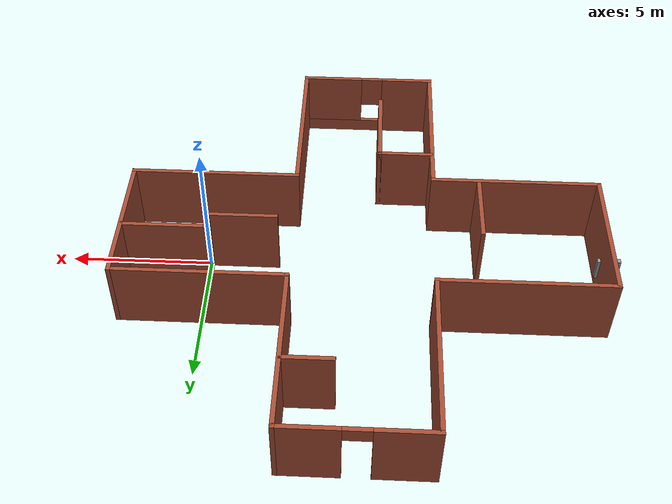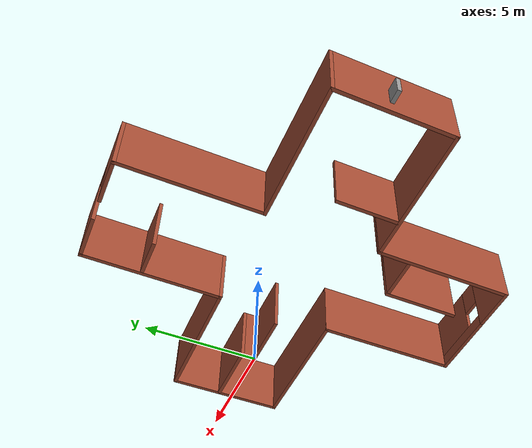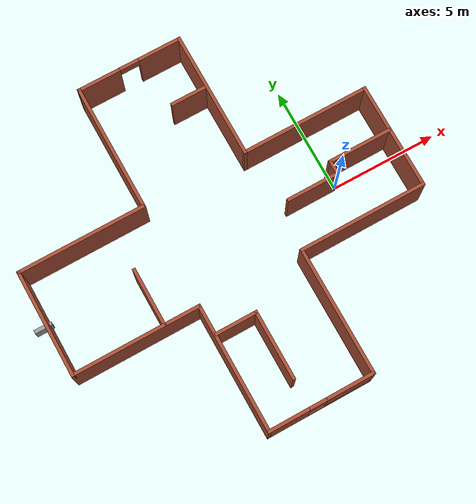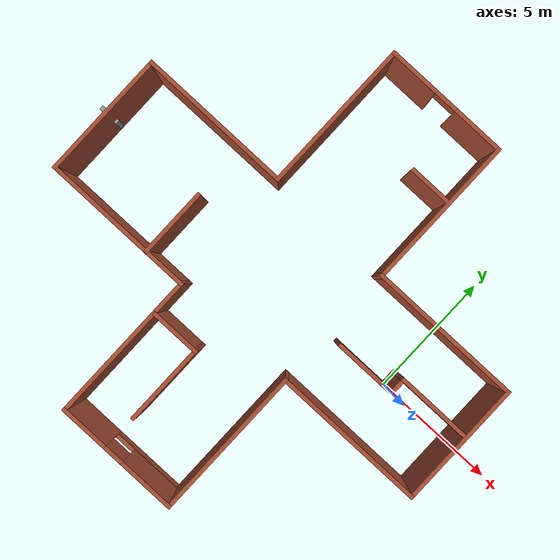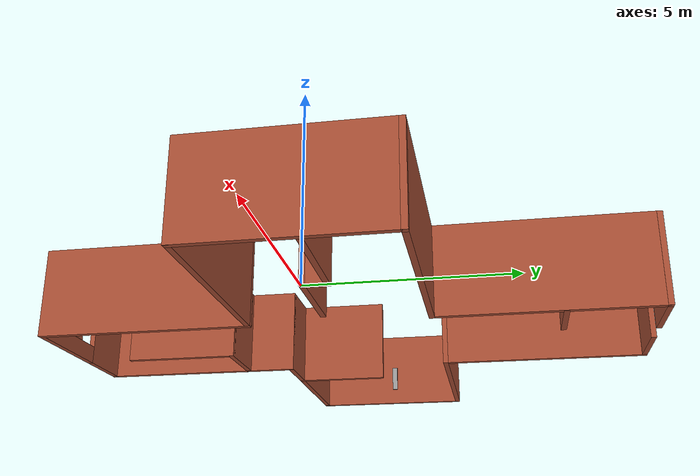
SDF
<?xml version='1.0'?>
<sdf version='1.7'>
  <model name='map'>
    <pose>-5.4148 0.292943 0 0 -0 0</pose>
    <link name='Wall_11'>
      <pose>0 -8.275 0 0 -0 0</pose>
      <visual name='Wall_11_Visual_0'>
        <pose>-1.52886 0 1.25 0 -0 0</pose>
        <geometry>
          <box>
            <size>1.94228 0.15 2.5</size>
          </box>
        </geometry>
        <material>
          <script>
            <uri>file://media/materials/scripts/gazebo.material</uri>
            <name>Gazebo/Bricks</name>
          </script>
          <ambient>1 1 1 1</ambient>
        </material>
        <meta>
          <layer>0</layer>
        </meta>
      </visual>
      <collision name='Wall_11_Collision_0'>
        <geometry>
          <box>
            <size>1.94228 0.15 2.5</size>
          </box>
        </geometry>
        <pose>-1.52886 0 1.25 0 -0 0</pose>
      </collision>
      <visual name='Wall_11_Visual_1'>
        <pose>0.971139 0 0.25 0 -0 0</pose>
        <geometry>
          <box>
            <size>3.05772 0.15 0.5</size>
          </box>
        </geometry>
        <material>
          <script>
            <uri>file://media/materials/scripts/gazebo.material</uri>
            <name>Gazebo/Bricks</name>
          </script>
          <ambient>1 1 1 1</ambient>
        </material>
        <meta>
          <layer>0</layer>
        </meta>
      </visual>
      <collision name='Wall_11_Collision_1'>
        <geometry>
          <box>
            <size>3.05772 0.15 0.5</size>
          </box>
        </geometry>
        <pose>0.971139 0 0.25 0 -0 0</pose>
      </collision>
      <visual name='Wall_11_Visual_2'>
        <pose>1.37114 0 1.5 0 -0 0</pose>
        <geometry>
          <box>
            <size>2.25772 0.15 2</size>
          </box>
        </geometry>
        <material>
          <script>
            <uri>file://media/materials/scripts/gazebo.material</uri>
            <name>Gazebo/Bricks</name>
          </script>
          <ambient>1 1 1 1</ambient>
        </material>
        <meta>
          <layer>0</layer>
        </meta>
      </visual>
      <collision name='Wall_11_Collision_2'>
        <geometry>
          <box>
            <size>2.25772 0.15 2</size>
          </box>
        </geometry>
        <pose>1.37114 0 1.5 0 -0 0</pose>
      </collision>
      <visual name='Wall_11_Visual_3'>
        <pose>-0.157722 0 1.9 0 -0 0</pose>
        <geometry>
          <box>
            <size>0.8 0.15 1.2</size>
          </box>
        </geometry>
        <material>
          <script>
            <uri>file://media/materials/scripts/gazebo.material</uri>
            <name>Gazebo/Bricks</name>
          </script>
          <ambient>1 1 1 1</ambient>
        </material>
        <meta>
          <layer>0</layer>
        </meta>
      </visual>
      <collision name='Wall_11_Collision_3'>
        <geometry>
          <box>
            <size>0.8 0.15 1.2</size>
          </box>
        </geometry>
        <pose>-0.157722 0 1.9 0 -0 0</pose>
      </collision>
    </link>
    <link name='Wall_12'>
      <collision name='Wall_12_Collision'>
        <geometry>
          <box>
            <size>6 0.15 2.5</size>
          </box>
        </geometry>
        <pose>0 0 1.25 0 -0 0</pose>
      </collision>
      <visual name='Wall_12_Visual'>
        <pose>0 0 1.25 0 -0 0</pose>
        <geometry>
          <box>
            <size>6 0.15 2.5</size>
          </box>
        </geometry>
        <material>
          <script>
            <uri>file://media/materials/scripts/gazebo.material</uri>
            <name>Gazebo/Bricks</name>
          </script>
          <ambient>1 1 1 1</ambient>
        </material>
        <meta>
          <layer>0</layer>
        </meta>
      </visual>
      <pose>2.425 -5.35 0 0 -0 1.5708</pose>
    </link>
    <link name='Wall_13'>
      <collision name='Wall_13_Collision'>
        <geometry>
          <box>
            <size>6 0.15 2.5</size>
          </box>
        </geometry>
        <pose>0 0 1.25 0 -0 0</pose>
      </collision>
      <visual name='Wall_13_Visual'>
        <pose>0 0 1.25 0 -0 0</pose>
        <geometry>
          <box>
            <size>6 0.15 2.5</size>
          </box>
        </geometry>
        <material>
          <script>
            <uri>file://media/materials/scripts/gazebo.material</uri>
            <name>Gazebo/Bricks</name>
          </script>
          <ambient>1 1 1 1</ambient>
        </material>
        <meta>
          <layer>0</layer>
        </meta>
      </visual>
      <pose>5.35 -2.425 0 0 -0 0</pose>
    </link>
    <link name='Wall_14'>
      <collision name='Wall_14_Collision'>
        <geometry>
          <box>
            <size>5 0.15 2.5</size>
          </box>
        </geometry>
        <pose>0 0 1.25 0 -0 0</pose>
      </collision>
      <visual name='Wall_14_Visual'>
        <pose>0 0 1.25 0 -0 0</pose>
        <geometry>
          <box>
            <size>5 0.15 2.5</size>
          </box>
        </geometry>
        <material>
          <script>
            <uri>file://media/materials/scripts/gazebo.material</uri>
            <name>Gazebo/Bricks</name>
          </script>
          <ambient>1 1 1 1</ambient>
        </material>
        <meta>
          <layer>0</layer>
        </meta>
      </visual>
      <pose>8.275 0 0 0 -0 1.5708</pose>
    </link>
    <link name='Wall_15'>
      <collision name='Wall_15_Collision'>
        <geometry>
          <box>
            <size>6 0.15 2.5</size>
          </box>
        </geometry>
        <pose>0 0 1.25 0 -0 0</pose>
      </collision>
      <visual name='Wall_15_Visual'>
        <pose>0 0 1.25 0 -0 0</pose>
        <geometry>
          <box>
            <size>6 0.15 2.5</size>
          </box>
        </geometry>
        <material>
          <script>
            <uri>file://media/materials/scripts/gazebo.material</uri>
            <name>Gazebo/Bricks</name>
          </script>
          <ambient>1 1 1 1</ambient>
        </material>
        <meta>
          <layer>0</layer>
        </meta>
      </visual>
      <pose>5.35 2.425 0 0 -0 3.14159</pose>
    </link>
    <link name='Wall_16'>
      <collision name='Wall_16_Collision'>
        <geometry>
          <box>
            <size>6 0.15 2.5</size>
          </box>
        </geometry>
        <pose>0 0 1.25 0 -0 0</pose>
      </collision>
      <visual name='Wall_16_Visual'>
        <pose>0 0 1.25 0 -0 0</pose>
        <geometry>
          <box>
            <size>6 0.15 2.5</size>
          </box>
        </geometry>
        <material>
          <script>
            <uri>file://media/materials/scripts/gazebo.material</uri>
            <name>Gazebo/Bricks</name>
          </script>
          <ambient>1 1 1 1</ambient>
        </material>
        <meta>
          <layer>0</layer>
        </meta>
      </visual>
      <pose>2.425 5.35 0 0 -0 1.5708</pose>
    </link>
    <link name='Wall_17'>
      <pose>0 8.275 0 0 -0 3.14159</pose>
      <visual name='Wall_17_Visual_0'>
        <pose>-1.4665 0 1.25 0 -0 0</pose>
        <geometry>
          <box>
            <size>2.06701 0.15 2.5</size>
          </box>
        </geometry>
        <material>
          <script>
            <uri>file://media/materials/scripts/gazebo.material</uri>
            <name>Gazebo/Bricks</name>
          </script>
          <ambient>1 1 1 1</ambient>
        </material>
        <meta>
          <layer>0</layer>
        </meta>
      </visual>
      <collision name='Wall_17_Collision_0'>
        <geometry>
          <box>
            <size>2.06701 0.15 2.5</size>
          </box>
        </geometry>
        <pose>-1.4665 0 1.25 0 -0 0</pose>
      </collision>
      <visual name='Wall_17_Visual_1'>
        <pose>1.4835 0 1.25 0 -0 0</pose>
        <geometry>
          <box>
            <size>2.03299 0.15 2.5</size>
          </box>
        </geometry>
        <material>
          <script>
            <uri>file://media/materials/scripts/gazebo.material</uri>
            <name>Gazebo/Bricks</name>
          </script>
          <ambient>1 1 1 1</ambient>
        </material>
        <meta>
          <layer>0</layer>
        </meta>
      </visual>
      <collision name='Wall_17_Collision_1'>
        <geometry>
          <box>
            <size>2.03299 0.15 2.5</size>
          </box>
        </geometry>
        <pose>1.4835 0 1.25 0 -0 0</pose>
      </collision>
      <visual name='Wall_17_Visual_2'>
        <pose>0.017007 0 2.25 0 -0 0</pose>
        <geometry>
          <box>
            <size>0.9 0.15 0.5</size>
          </box>
        </geometry>
        <material>
          <script>
            <uri>file://media/materials/scripts/gazebo.material</uri>
            <name>Gazebo/Bricks</name>
          </script>
          <ambient>1 1 1 1</ambient>
        </material>
        <meta>
          <layer>0</layer>
        </meta>
      </visual>
      <collision name='Wall_17_Collision_2'>
        <geometry>
          <box>
            <size>0.9 0.15 0.5</size>
          </box>
        </geometry>
        <pose>0.017007 0 2.25 0 -0 0</pose>
      </collision>
    </link>
    <link name='Wall_18'>
      <collision name='Wall_18_Collision'>
        <geometry>
          <box>
            <size>6 0.15 2.5</size>
          </box>
        </geometry>
        <pose>0 0 1.25 0 -0 0</pose>
      </collision>
      <visual name='Wall_18_Visual'>
        <pose>0 0 1.25 0 -0 0</pose>
        <geometry>
          <box>
            <size>6 0.15 2.5</size>
          </box>
        </geometry>
        <material>
          <script>
            <uri>file://media/materials/scripts/gazebo.material</uri>
            <name>Gazebo/Bricks</name>
          </script>
          <ambient>1 1 1 1</ambient>
        </material>
        <meta>
          <layer>0</layer>
        </meta>
      </visual>
      <pose>-2.425 5.35 0 0 -0 -1.5708</pose>
    </link>
    <link name='Wall_19'>
      <collision name='Wall_19_Collision'>
        <geometry>
          <box>
            <size>6 0.15 2.5</size>
          </box>
        </geometry>
        <pose>0 0 1.25 0 -0 0</pose>
      </collision>
      <visual name='Wall_19_Visual'>
        <pose>0 0 1.25 0 -0 0</pose>
        <geometry>
          <box>
            <size>6 0.15 2.5</size>
          </box>
        </geometry>
        <material>
          <script>
            <uri>file://media/materials/scripts/gazebo.material</uri>
            <name>Gazebo/Bricks</name>
          </script>
          <ambient>1 1 1 1</ambient>
        </material>
        <meta>
          <layer>0</layer>
        </meta>
      </visual>
      <pose>-5.35 2.425 0 0 -0 3.14159</pose>
    </link>
    <link name='Wall_22'>
      <collision name='Wall_22_Collision'>
        <geometry>
          <box>
            <size>2.75 0.15 2.5</size>
          </box>
        </geometry>
        <pose>0 0 1.25 0 -0 0</pose>
      </collision>
      <visual name='Wall_22_Visual'>
        <pose>0 0 1.25 0 -0 0</pose>
        <geometry>
          <box>
            <size>2.75 0.15 2.5</size>
          </box>
        </geometry>
        <material>
          <script>
            <uri>file://media/materials/scripts/gazebo.material</uri>
            <name>Gazebo/Bricks</name>
          </script>
          <ambient>1 1 1 1</ambient>
        </material>
        <meta>
          <layer>0</layer>
        </meta>
      </visual>
      <pose>-4.04807 -1.10668 0 0 -0 1.5708</pose>
    </link>
    <link name='Wall_24'>
      <collision name='Wall_24_Collision'>
        <geometry>
          <box>
            <size>3 0.15 2.5</size>
          </box>
        </geometry>
        <pose>0 0 1.25 0 -0 0</pose>
      </collision>
      <visual name='Wall_24_Visual'>
        <pose>0 0 1.25 0 -0 0</pose>
        <geometry>
          <box>
            <size>3 0.15 2.5</size>
          </box>
        </geometry>
        <material>
          <script>
            <uri>file://media/materials/scripts/gazebo.material</uri>
            <name>Gazebo/Bricks</name>
          </script>
          <ambient>1 1 1 1</ambient>
        </material>
        <meta>
          <layer>0</layer>
        </meta>
      </visual>
      <pose>6.79361 0.315855 0 0 -0 3.14159</pose>
    </link>
    <link name='Wall_25'>
      <collision name='Wall_25_Collision'>
        <geometry>
          <box>
            <size>0.75 0.15 2.5</size>
          </box>
        </geometry>
        <pose>0 0 1.25 0 -0 0</pose>
      </collision>
      <visual name='Wall_25_Visual'>
        <pose>0 0 1.25 0 -0 0</pose>
        <geometry>
          <box>
            <size>0.75 0.15 2.5</size>
          </box>
        </geometry>
        <material>
          <script>
            <uri>file://media/materials/scripts/gazebo.material</uri>
            <name>Gazebo/Bricks</name>
          </script>
          <ambient>1 1 1 1</ambient>
        </material>
        <meta>
          <layer>0</layer>
        </meta>
      </visual>
      <pose>5.36861 0.015855 0 0 -0 -1.5708</pose>
    </link>
    <link name='Wall_26'>
      <collision name='Wall_26_Collision'>
        <geometry>
          <box>
            <size>2.5 0.15 2.5</size>
          </box>
        </geometry>
        <pose>0 0 1.25 0 -0 0</pose>
      </collision>
      <visual name='Wall_26_Visual'>
        <pose>0 0 1.25 0 -0 0</pose>
        <geometry>
          <box>
            <size>2.5 0.15 2.5</size>
          </box>
        </geometry>
        <material>
          <script>
            <uri>file://media/materials/scripts/gazebo.material</uri>
            <name>Gazebo/Bricks</name>
          </script>
          <ambient>1 1 1 1</ambient>
        </material>
        <meta>
          <layer>0</layer>
        </meta>
      </visual>
      <pose>4.19361 -0.284145 0 0 -0 3.14159</pose>
    </link>
    <link name='Wall_28'>
      <collision name='Wall_28_Collision'>
        <geometry>
          <box>
            <size>2 0.15 2.5</size>
          </box>
        </geometry>
        <pose>0 0 1.25 0 -0 0</pose>
      </collision>
      <visual name='Wall_28_Visual'>
        <pose>0 0 1.25 0 -0 0</pose>
        <geometry>
          <box>
            <size>2 0.15 2.5</size>
          </box>
        </geometry>
        <material>
          <script>
            <uri>file://media/materials/scripts/gazebo.material</uri>
            <name>Gazebo/Bricks</name>
          </script>
          <ambient>1 1 1 1</ambient>
        </material>
        <meta>
          <layer>0</layer>
        </meta>
      </visual>
      <pose>-1.44061 -3.78324 0 0 -0 0</pose>
    </link>
    <link name='Wall_29'>
      <collision name='Wall_29_Collision'>
        <geometry>
          <box>
            <size>3.25 0.15 2.5</size>
          </box>
        </geometry>
        <pose>0 0 1.25 0 -0 0</pose>
      </collision>
      <visual name='Wall_29_Visual'>
        <pose>0 0 1.25 0 -0 0</pose>
        <geometry>
          <box>
            <size>3.25 0.15 2.5</size>
          </box>
        </geometry>
        <material>
          <script>
            <uri>file://media/materials/scripts/gazebo.material</uri>
            <name>Gazebo/Bricks</name>
          </script>
          <ambient>1 1 1 1</ambient>
        </material>
        <meta>
          <layer>0</layer>
        </meta>
      </visual>
      <pose>-0.515609 -5.33324 0 0 -0 -1.5708</pose>
    </link>
    <link name='Wall_33'>
      <collision name='Wall_33_Collision'>
        <geometry>
          <box>
            <size>1.75 0.15 2.5</size>
          </box>
        </geometry>
        <pose>0 0 1.25 0 -0 0</pose>
      </collision>
      <visual name='Wall_33_Visual'>
        <pose>0 0 1.25 0 -0 0</pose>
        <geometry>
          <box>
            <size>1.75 0.15 2.5</size>
          </box>
        </geometry>
        <material>
          <script>
            <uri>file://media/materials/scripts/gazebo.material</uri>
            <name>Gazebo/Bricks</name>
          </script>
          <ambient>1 1 1 1</ambient>
        </material>
        <meta>
          <layer>0</layer>
        </meta>
      </visual>
      <pose>1.57588 5.79151 0 0 -0 3.14159</pose>
    </link>
    <link name='Wall_5'>
      <collision name='Wall_5_Collision'>
        <geometry>
          <box>
            <size>5 0.15 2.5</size>
          </box>
        </geometry>
        <pose>0 0 1.25 0 -0 0</pose>
      </collision>
      <visual name='Wall_5_Visual'>
        <pose>0 0 1.25 0 -0 0</pose>
        <geometry>
          <box>
            <size>5 0.15 2.5</size>
          </box>
        </geometry>
        <material>
          <script>
            <uri>file://media/materials/scripts/gazebo.material</uri>
            <name>Gazebo/Bricks</name>
          </script>
          <ambient>1 1 1 1</ambient>
        </material>
        <meta>
          <layer>0</layer>
        </meta>
      </visual>
      <pose>-8.275 0 0 0 -0 -1.5708</pose>
    </link>
    <link name='Wall_6'>
      <collision name='Wall_6_Collision'>
        <geometry>
          <box>
            <size>6 0.15 2.5</size>
          </box>
        </geometry>
        <pose>0 0 1.25 0 -0 0</pose>
      </collision>
      <visual name='Wall_6_Visual'>
        <pose>0 0 1.25 0 -0 0</pose>
        <geometry>
          <box>
            <size>6 0.15 2.5</size>
          </box>
        </geometry>
        <material>
          <script>
            <uri>file://media/materials/scripts/gazebo.material</uri>
            <name>Gazebo/Bricks</name>
          </script>
          <ambient>1 1 1 1</ambient>
        </material>
        <meta>
          <layer>0</layer>
        </meta>
      </visual>
      <pose>-5.35 -2.425 0 0 -0 0</pose>
    </link>
    <link name='Wall_9'>
      <collision name='Wall_9_Collision'>
        <geometry>
          <box>
            <size>6 0.15 2.5</size>
          </box>
        </geometry>
        <pose>0 0 1.25 0 -0 0</pose>
      </collision>
      <visual name='Wall_9_Visual'>
        <pose>0 0 1.25 0 -0 0</pose>
        <geometry>
          <box>
            <size>6 0.15 2.5</size>
          </box>
        </geometry>
        <material>
          <script>
            <uri>file://media/materials/scripts/gazebo.material</uri>
            <name>Gazebo/Bricks</name>
          </script>
          <ambient>1 1 1 1</ambient>
        </material>
        <meta>
          <layer>0</layer>
        </meta>
      </visual>
      <pose>-2.425 -5.35 0 0 -0 -1.5708</pose>
    </link>
    <link name='Window_0'>
      <collision name='Window_0_Collision'>
        <geometry>
          <box>
            <size>0.8 0.17 0.8</size>
          </box>
        </geometry>
        <pose>0 0 0.4 0 -0 0</pose>
      </collision>
      <visual name='Window_0_Visual'>
        <pose>0 0 0.4 0 -0 0</pose>
        <geometry>
          <box>
            <size>0.8 0.17 0.8</size>
          </box>
        </geometry>
        <material>
          <script>
            <uri>file://media/materials/scripts/gazebo.material</uri>
            <name>Gazebo/Grey</name>
          </script>
        </material>
      </visual>
      <pose>-8.49509 0.149887 0.5 0 -0 0</pose>
    </link>
    <static>1</static>
  </model>
</sdf>
